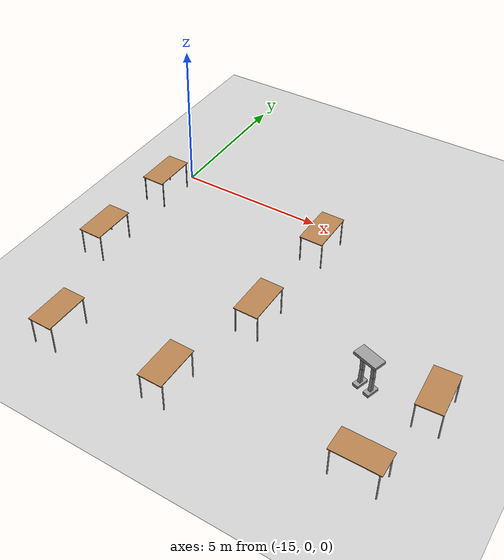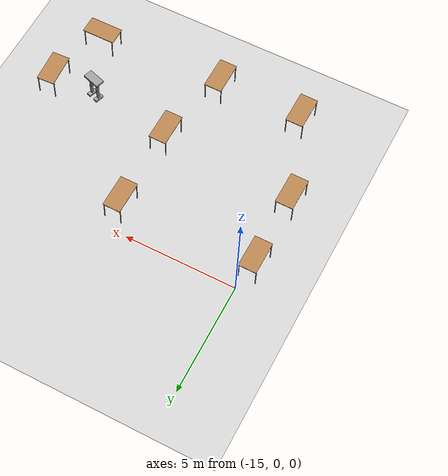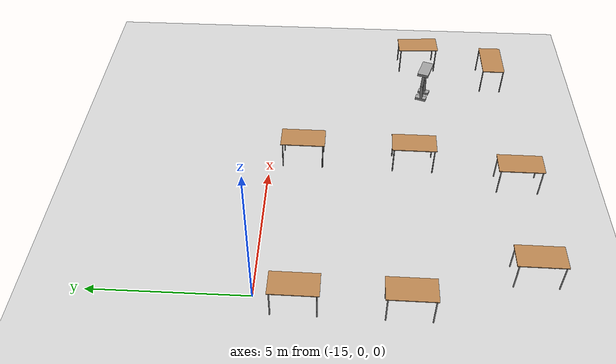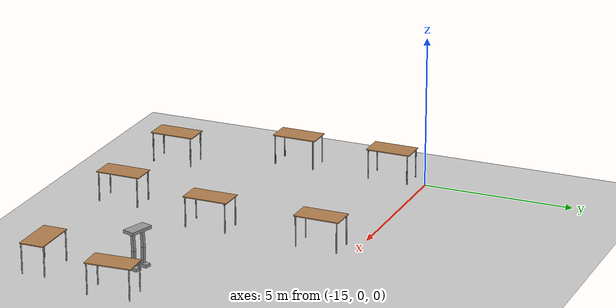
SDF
<sdf version="1.6">
 <world name="default">
  <model name="ground_plane">
   <static>1</static>
   <link name="link">
    <collision name="collision">
     <geometry><plane><normal>0 0 1</normal><size>100 100</size></plane></geometry>
     <surface>
      <contact><collide_bitmask>65535</collide_bitmask></contact>
      <friction><ode><mu>100</mu><mu2>50</mu2></ode></friction>
     </surface>
    </collision>
    <visual name="visual">
     <cast_shadows>0</cast_shadows>
     <geometry><plane><normal>0 0 1</normal><size>100 100</size></plane></geometry>
     <material>
      <script><uri>file://media/materials/scripts/gazebo.material</uri><name>Gazebo/Grey</name></script>
     </material>
    </visual>
   </link>
  </model>
  <model name="table">
   <static>1</static>
   <link name="link">
    <collision name="surface">
     <pose>0 0 1 0 -0 0</pose>
     <geometry><box><size>1.5 0.8 0.03</size></box></geometry>
     <surface><friction><ode><mu>0.6</mu><mu2>0.6</mu2></ode></friction></surface>
    </collision>
    <visual name="visual1">
     <pose>0 0 1 0 -0 0</pose>
     <geometry><box><size>1.5 0.8 0.03</size></box></geometry>
     <material>
      <script><uri>file://media/materials/scripts/gazebo.material</uri><name>Gazebo/Wood</name></script>
     </material>
    </visual>
    <collision name="front_left_leg">
     <pose>0.68 0.38 0.5 0 -0 0</pose>
     <geometry><cylinder><radius>0.02</radius><length>1</length></cylinder></geometry>
    </collision>
    <visual name="front_left_leg">
     <pose>0.68 0.38 0.5 0 -0 0</pose>
     <geometry><cylinder><radius>0.02</radius><length>1</length></cylinder></geometry>
     <material>
      <script><uri>file://media/materials/scripts/gazebo.material</uri><name>Gazebo/Grey</name></script>
     </material>
    </visual>
    <collision name="front_right_leg">
     <pose>0.68 -0.38 0.5 0 -0 0</pose>
     <geometry><cylinder><radius>0.02</radius><length>1</length></cylinder></geometry>
    </collision>
    <visual name="front_right_leg">
     <pose>0.68 -0.38 0.5 0 -0 0</pose>
     <geometry><cylinder><radius>0.02</radius><length>1</length></cylinder></geometry>
     <material>
      <script><uri>file://media/materials/scripts/gazebo.material</uri><name>Gazebo/Grey</name></script>
     </material>
    </visual>
    <collision name="back_right_leg">
     <pose>-0.68 -0.38 0.5 0 -0 0</pose>
     <geometry><cylinder><radius>0.02</radius><length>1</length></cylinder></geometry>
    </collision>
    <visual name="back_right_leg">
     <pose>-0.68 -0.38 0.5 0 -0 0</pose>
     <geometry><cylinder><radius>0.02</radius><length>1</length></cylinder></geometry>
     <material>
      <script><uri>file://media/materials/scripts/gazebo.material</uri><name>Gazebo/Grey</name></script>
     </material>
    </visual>
    <collision name="back_left_leg">
     <pose>-0.68 0.38 0.5 0 -0 0</pose>
     <geometry><cylinder><radius>0.02</radius><length>1</length></cylinder></geometry>
    </collision>
    <visual name="back_left_leg">
     <pose>-0.68 0.38 0.5 0 -0 0</pose>
     <geometry><cylinder><radius>0.02</radius><length>1</length></cylinder></geometry>
     <material>
      <script><uri>file://media/materials/scripts/gazebo.material</uri><name>Gazebo/Grey</name></script>
     </material>
    </visual>
   </link>
   <pose>-4.33003 -8.10689 0 0 -0 0</pose>
  </model>
  <model name="table_clone">
   <static>1</static>
   <link name="link">
    <collision name="surface">
     <pose>0 0 1 0 -0 0</pose>
     <geometry><box><size>1.5 0.8 0.03</size></box></geometry>
     <surface><friction><ode><mu>0.6</mu><mu2>0.6</mu2></ode></friction></surface>
    </collision>
    <visual name="visual1">
     <pose>0 0 1 0 -0 0</pose>
     <geometry><box><size>1.5 0.8 0.03</size></box></geometry>
     <material>
      <script><uri>file://media/materials/scripts/gazebo.material</uri><name>Gazebo/Wood</name></script>
     </material>
    </visual>
    <collision name="front_left_leg">
     <pose>0.68 0.38 0.5 0 -0 0</pose>
     <geometry><cylinder><radius>0.02</radius><length>1</length></cylinder></geometry>
    </collision>
    <visual name="front_left_leg">
     <pose>0.68 0.38 0.5 0 -0 0</pose>
     <geometry><cylinder><radius>0.02</radius><length>1</length></cylinder></geometry>
     <material>
      <script><uri>file://media/materials/scripts/gazebo.material</uri><name>Gazebo/Grey</name></script>
     </material>
    </visual>
    <collision name="front_right_leg">
     <pose>0.68 -0.38 0.5 0 -0 0</pose>
     <geometry><cylinder><radius>0.02</radius><length>1</length></cylinder></geometry>
    </collision>
    <visual name="front_right_leg">
     <pose>0.68 -0.38 0.5 0 -0 0</pose>
     <geometry><cylinder><radius>0.02</radius><length>1</length></cylinder></geometry>
     <material>
      <script><uri>file://media/materials/scripts/gazebo.material</uri><name>Gazebo/Grey</name></script>
     </material>
    </visual>
    <collision name="back_right_leg">
     <pose>-0.68 -0.38 0.5 0 -0 0</pose>
     <geometry><cylinder><radius>0.02</radius><length>1</length></cylinder></geometry>
    </collision>
    <visual name="back_right_leg">
     <pose>-0.68 -0.38 0.5 0 -0 0</pose>
     <geometry><cylinder><radius>0.02</radius><length>1</length></cylinder></geometry>
     <material>
      <script><uri>file://media/materials/scripts/gazebo.material</uri><name>Gazebo/Grey</name></script>
     </material>
    </visual>
    <collision name="back_left_leg">
     <pose>-0.68 0.38 0.5 0 -0 0</pose>
     <geometry><cylinder><radius>0.02</radius><length>1</length></cylinder></geometry>
    </collision>
    <visual name="back_left_leg">
     <pose>-0.68 0.38 0.5 0 -0 0</pose>
     <geometry><cylinder><radius>0.02</radius><length>1</length></cylinder></geometry>
     <material>
      <script><uri>file://media/materials/scripts/gazebo.material</uri><name>Gazebo/Grey</name></script>
     </material>
    </visual>
   </link>
   <pose>-3.46482 -5.32509 0 0 -0 1.62652</pose>
  </model>
  <model name="table_clone_clone_0">
   <static>1</static>
   <link name="link">
    <collision name="surface">
     <pose>0 0 1 0 -0 0</pose>
     <geometry><box><size>1.5 0.8 0.03</size></box></geometry>
     <surface><friction><ode><mu>0.6</mu><mu2>0.6</mu2></ode></friction></surface>
    </collision>
    <visual name="visual1">
     <pose>0 0 1 0 -0 0</pose>
     <geometry><box><size>1.5 0.8 0.03</size></box></geometry>
     <material>
      <script><uri>file://media/materials/scripts/gazebo.material</uri><name>Gazebo/Wood</name></script>
     </material>
    </visual>
    <collision name="front_left_leg">
     <pose>0.68 0.38 0.5 0 -0 0</pose>
     <geometry><cylinder><radius>0.02</radius><length>1</length></cylinder></geometry>
    </collision>
    <visual name="front_left_leg">
     <pose>0.68 0.38 0.5 0 -0 0</pose>
     <geometry><cylinder><radius>0.02</radius><length>1</length></cylinder></geometry>
     <material>
      <script><uri>file://media/materials/scripts/gazebo.material</uri><name>Gazebo/Grey</name></script>
     </material>
    </visual>
    <collision name="front_right_leg">
     <pose>0.68 -0.38 0.5 0 -0 0</pose>
     <geometry><cylinder><radius>0.02</radius><length>1</length></cylinder></geometry>
    </collision>
    <visual name="front_right_leg">
     <pose>0.68 -0.38 0.5 0 -0 0</pose>
     <geometry><cylinder><radius>0.02</radius><length>1</length></cylinder></geometry>
     <material>
      <script><uri>file://media/materials/scripts/gazebo.material</uri><name>Gazebo/Grey</name></script>
     </material>
    </visual>
    <collision name="back_right_leg">
     <pose>-0.68 -0.38 0.5 0 -0 0</pose>
     <geometry><cylinder><radius>0.02</radius><length>1</length></cylinder></geometry>
    </collision>
    <visual name="back_right_leg">
     <pose>-0.68 -0.38 0.5 0 -0 0</pose>
     <geometry><cylinder><radius>0.02</radius><length>1</length></cylinder></geometry>
     <material>
      <script><uri>file://media/materials/scripts/gazebo.material</uri><name>Gazebo/Grey</name></script>
     </material>
    </visual>
    <collision name="back_left_leg">
     <pose>-0.68 0.38 0.5 0 -0 0</pose>
     <geometry><cylinder><radius>0.02</radius><length>1</length></cylinder></geometry>
    </collision>
    <visual name="back_left_leg">
     <pose>-0.68 0.38 0.5 0 -0 0</pose>
     <geometry><cylinder><radius>0.02</radius><length>1</length></cylinder></geometry>
     <material>
      <script><uri>file://media/materials/scripts/gazebo.material</uri><name>Gazebo/Grey</name></script>
     </material>
    </visual>
   </link>
   <pose>-15.2334 -4.56287 0 0 -0 1.56371</pose>
  </model>
  <model name="table_clone_clone_1">
   <static>1</static>
   <link name="link">
    <collision name="surface">
     <pose>0 0 1 0 -0 0</pose>
     <geometry><box><size>1.5 0.8 0.03</size></box></geometry>
     <surface><friction><ode><mu>0.6</mu><mu2>0.6</mu2></ode></friction></surface>
    </collision>
    <visual name="visual1">
     <pose>0 0 1 0 -0 0</pose>
     <geometry><box><size>1.5 0.8 0.03</size></box></geometry>
     <material>
      <script><uri>file://media/materials/scripts/gazebo.material</uri><name>Gazebo/Wood</name></script>
     </material>
    </visual>
    <collision name="front_left_leg">
     <pose>0.68 0.38 0.5 0 -0 0</pose>
     <geometry><cylinder><radius>0.02</radius><length>1</length></cylinder></geometry>
    </collision>
    <visual name="front_left_leg">
     <pose>0.68 0.38 0.5 0 -0 0</pose>
     <geometry><cylinder><radius>0.02</radius><length>1</length></cylinder></geometry>
     <material>
      <script><uri>file://media/materials/scripts/gazebo.material</uri><name>Gazebo/Grey</name></script>
     </material>
    </visual>
    <collision name="front_right_leg">
     <pose>0.68 -0.38 0.5 0 -0 0</pose>
     <geometry><cylinder><radius>0.02</radius><length>1</length></cylinder></geometry>
    </collision>
    <visual name="front_right_leg">
     <pose>0.68 -0.38 0.5 0 -0 0</pose>
     <geometry><cylinder><radius>0.02</radius><length>1</length></cylinder></geometry>
     <material>
      <script><uri>file://media/materials/scripts/gazebo.material</uri><name>Gazebo/Grey</name></script>
     </material>
    </visual>
    <collision name="back_right_leg">
     <pose>-0.68 -0.38 0.5 0 -0 0</pose>
     <geometry><cylinder><radius>0.02</radius><length>1</length></cylinder></geometry>
    </collision>
    <visual name="back_right_leg">
     <pose>-0.68 -0.38 0.5 0 -0 0</pose>
     <geometry><cylinder><radius>0.02</radius><length>1</length></cylinder></geometry>
     <material>
      <script><uri>file://media/materials/scripts/gazebo.material</uri><name>Gazebo/Grey</name></script>
     </material>
    </visual>
    <collision name="back_left_leg">
     <pose>-0.68 0.38 0.5 0 -0 0</pose>
     <geometry><cylinder><radius>0.02</radius><length>1</length></cylinder></geometry>
    </collision>
    <visual name="back_left_leg">
     <pose>-0.68 0.38 0.5 0 -0 0</pose>
     <geometry><cylinder><radius>0.02</radius><length>1</length></cylinder></geometry>
     <material>
      <script><uri>file://media/materials/scripts/gazebo.material</uri><name>Gazebo/Grey</name></script>
     </material>
    </visual>
   </link>
   <pose>-15.2195 -1.24304 0 0 -0 1.56371</pose>
  </model>
  <model name="table_clone_clone_4">
   <static>1</static>
   <link name="link">
    <collision name="surface">
     <pose>0 0 1 0 -0 0</pose>
     <geometry><box><size>1.5 0.8 0.03</size></box></geometry>
     <surface><friction><ode><mu>0.6</mu><mu2>0.6</mu2></ode></friction></surface>
    </collision>
    <visual name="visual1">
     <pose>0 0 1 0 -0 0</pose>
     <geometry><box><size>1.5 0.8 0.03</size></box></geometry>
     <material>
      <script><uri>file://media/materials/scripts/gazebo.material</uri><name>Gazebo/Wood</name></script>
     </material>
    </visual>
    <collision name="front_left_leg">
     <pose>0.68 0.38 0.5 0 -0 0</pose>
     <geometry><cylinder><radius>0.02</radius><length>1</length></cylinder></geometry>
    </collision>
    <visual name="front_left_leg">
     <pose>0.68 0.38 0.5 0 -0 0</pose>
     <geometry><cylinder><radius>0.02</radius><length>1</length></cylinder></geometry>
     <material>
      <script><uri>file://media/materials/scripts/gazebo.material</uri><name>Gazebo/Grey</name></script>
     </material>
    </visual>
    <collision name="front_right_leg">
     <pose>0.68 -0.38 0.5 0 -0 0</pose>
     <geometry><cylinder><radius>0.02</radius><length>1</length></cylinder></geometry>
    </collision>
    <visual name="front_right_leg">
     <pose>0.68 -0.38 0.5 0 -0 0</pose>
     <geometry><cylinder><radius>0.02</radius><length>1</length></cylinder></geometry>
     <material>
      <script><uri>file://media/materials/scripts/gazebo.material</uri><name>Gazebo/Grey</name></script>
     </material>
    </visual>
    <collision name="back_right_leg">
     <pose>-0.68 -0.38 0.5 0 -0 0</pose>
     <geometry><cylinder><radius>0.02</radius><length>1</length></cylinder></geometry>
    </collision>
    <visual name="back_right_leg">
     <pose>-0.68 -0.38 0.5 0 -0 0</pose>
     <geometry><cylinder><radius>0.02</radius><length>1</length></cylinder></geometry>
     <material>
      <script><uri>file://media/materials/scripts/gazebo.material</uri><name>Gazebo/Grey</name></script>
     </material>
    </visual>
    <collision name="back_left_leg">
     <pose>-0.68 0.38 0.5 0 -0 0</pose>
     <geometry><cylinder><radius>0.02</radius><length>1</length></cylinder></geometry>
    </collision>
    <visual name="back_left_leg">
     <pose>-0.68 0.38 0.5 0 -0 0</pose>
     <geometry><cylinder><radius>0.02</radius><length>1</length></cylinder></geometry>
     <material>
      <script><uri>file://media/materials/scripts/gazebo.material</uri><name>Gazebo/Grey</name></script>
     </material>
    </visual>
   </link>
   <pose>-9.1294 -1.14535 0 0 -0 1.56371</pose>
  </model>
  <model name="table_clone_clone_5">
   <static>1</static>
   <link name="link">
    <collision name="surface">
     <pose>0 0 1 0 -0 0</pose>
     <geometry><box><size>1.5 0.8 0.03</size></box></geometry>
     <surface><friction><ode><mu>0.6</mu><mu2>0.6</mu2></ode></friction></surface>
    </collision>
    <visual name="visual1">
     <pose>0 0 1 0 -0 0</pose>
     <geometry><box><size>1.5 0.8 0.03</size></box></geometry>
     <material>
      <script><uri>file://media/materials/scripts/gazebo.material</uri><name>Gazebo/Wood</name></script>
     </material>
    </visual>
    <collision name="front_left_leg">
     <pose>0.68 0.38 0.5 0 -0 0</pose>
     <geometry><cylinder><radius>0.02</radius><length>1</length></cylinder></geometry>
    </collision>
    <visual name="front_left_leg">
     <pose>0.68 0.38 0.5 0 -0 0</pose>
     <geometry><cylinder><radius>0.02</radius><length>1</length></cylinder></geometry>
     <material>
      <script><uri>file://media/materials/scripts/gazebo.material</uri><name>Gazebo/Grey</name></script>
     </material>
    </visual>
    <collision name="front_right_leg">
     <pose>0.68 -0.38 0.5 0 -0 0</pose>
     <geometry><cylinder><radius>0.02</radius><length>1</length></cylinder></geometry>
    </collision>
    <visual name="front_right_leg">
     <pose>0.68 -0.38 0.5 0 -0 0</pose>
     <geometry><cylinder><radius>0.02</radius><length>1</length></cylinder></geometry>
     <material>
      <script><uri>file://media/materials/scripts/gazebo.material</uri><name>Gazebo/Grey</name></script>
     </material>
    </visual>
    <collision name="back_right_leg">
     <pose>-0.68 -0.38 0.5 0 -0 0</pose>
     <geometry><cylinder><radius>0.02</radius><length>1</length></cylinder></geometry>
    </collision>
    <visual name="back_right_leg">
     <pose>-0.68 -0.38 0.5 0 -0 0</pose>
     <geometry><cylinder><radius>0.02</radius><length>1</length></cylinder></geometry>
     <material>
      <script><uri>file://media/materials/scripts/gazebo.material</uri><name>Gazebo/Grey</name></script>
     </material>
    </visual>
    <collision name="back_left_leg">
     <pose>-0.68 0.38 0.5 0 -0 0</pose>
     <geometry><cylinder><radius>0.02</radius><length>1</length></cylinder></geometry>
    </collision>
    <visual name="back_left_leg">
     <pose>-0.68 0.38 0.5 0 -0 0</pose>
     <geometry><cylinder><radius>0.02</radius><length>1</length></cylinder></geometry>
     <material>
      <script><uri>file://media/materials/scripts/gazebo.material</uri><name>Gazebo/Grey</name></script>
     </material>
    </visual>
   </link>
   <pose>-9.19399 -4.91758 0 0 -0 1.56371</pose>
  </model>
  <model name="table_clone_clone_6">
   <static>1</static>
   <link name="link">
    <collision name="surface">
     <pose>0 0 1 0 -0 0</pose>
     <geometry><box><size>1.5 0.8 0.03</size></box></geometry>
     <surface><friction><ode><mu>0.6</mu><mu2>0.6</mu2></ode></friction></surface>
    </collision>
    <visual name="visual1">
     <pose>0 0 1 0 -0 0</pose>
     <geometry><box><size>1.5 0.8 0.03</size></box></geometry>
     <material>
      <script><uri>file://media/materials/scripts/gazebo.material</uri><name>Gazebo/Wood</name></script>
     </material>
    </visual>
    <collision name="front_left_leg">
     <pose>0.68 0.38 0.5 0 -0 0</pose>
     <geometry><cylinder><radius>0.02</radius><length>1</length></cylinder></geometry>
    </collision>
    <visual name="front_left_leg">
     <pose>0.68 0.38 0.5 0 -0 0</pose>
     <geometry><cylinder><radius>0.02</radius><length>1</length></cylinder></geometry>
     <material>
      <script><uri>file://media/materials/scripts/gazebo.material</uri><name>Gazebo/Grey</name></script>
     </material>
    </visual>
    <collision name="front_right_leg">
     <pose>0.68 -0.38 0.5 0 -0 0</pose>
     <geometry><cylinder><radius>0.02</radius><length>1</length></cylinder></geometry>
    </collision>
    <visual name="front_right_leg">
     <pose>0.68 -0.38 0.5 0 -0 0</pose>
     <geometry><cylinder><radius>0.02</radius><length>1</length></cylinder></geometry>
     <material>
      <script><uri>file://media/materials/scripts/gazebo.material</uri><name>Gazebo/Grey</name></script>
     </material>
    </visual>
    <collision name="back_right_leg">
     <pose>-0.68 -0.38 0.5 0 -0 0</pose>
     <geometry><cylinder><radius>0.02</radius><length>1</length></cylinder></geometry>
    </collision>
    <visual name="back_right_leg">
     <pose>-0.68 -0.38 0.5 0 -0 0</pose>
     <geometry><cylinder><radius>0.02</radius><length>1</length></cylinder></geometry>
     <material>
      <script><uri>file://media/materials/scripts/gazebo.material</uri><name>Gazebo/Grey</name></script>
     </material>
    </visual>
    <collision name="back_left_leg">
     <pose>-0.68 0.38 0.5 0 -0 0</pose>
     <geometry><cylinder><radius>0.02</radius><length>1</length></cylinder></geometry>
    </collision>
    <visual name="back_left_leg">
     <pose>-0.68 0.38 0.5 0 -0 0</pose>
     <geometry><cylinder><radius>0.02</radius><length>1</length></cylinder></geometry>
     <material>
      <script><uri>file://media/materials/scripts/gazebo.material</uri><name>Gazebo/Grey</name></script>
     </material>
    </visual>
   </link>
   <pose>-13.878 -8.37207 0 0 -0 1.56371</pose>
  </model>
  <model name="table_clone_clone_7">
   <static>1</static>
   <link name="link">
    <collision name="surface">
     <pose>0 0 1 0 -0 0</pose>
     <geometry><box><size>1.5 0.8 0.03</size></box></geometry>
     <surface><friction><ode><mu>0.6</mu><mu2>0.6</mu2></ode></friction></surface>
    </collision>
    <visual name="visual1">
     <pose>0 0 1 0 -0 0</pose>
     <geometry><box><size>1.5 0.8 0.03</size></box></geometry>
     <material>
      <script><uri>file://media/materials/scripts/gazebo.material</uri><name>Gazebo/Wood</name></script>
     </material>
    </visual>
    <collision name="front_left_leg">
     <pose>0.68 0.38 0.5 0 -0 0</pose>
     <geometry><cylinder><radius>0.02</radius><length>1</length></cylinder></geometry>
    </collision>
    <visual name="front_left_leg">
     <pose>0.68 0.38 0.5 0 -0 0</pose>
     <geometry><cylinder><radius>0.02</radius><length>1</length></cylinder></geometry>
     <material>
      <script><uri>file://media/materials/scripts/gazebo.material</uri><name>Gazebo/Grey</name></script>
     </material>
    </visual>
    <collision name="front_right_leg">
     <pose>0.68 -0.38 0.5 0 -0 0</pose>
     <geometry><cylinder><radius>0.02</radius><length>1</length></cylinder></geometry>
    </collision>
    <visual name="front_right_leg">
     <pose>0.68 -0.38 0.5 0 -0 0</pose>
     <geometry><cylinder><radius>0.02</radius><length>1</length></cylinder></geometry>
     <material>
      <script><uri>file://media/materials/scripts/gazebo.material</uri><name>Gazebo/Grey</name></script>
     </material>
    </visual>
    <collision name="back_right_leg">
     <pose>-0.68 -0.38 0.5 0 -0 0</pose>
     <geometry><cylinder><radius>0.02</radius><length>1</length></cylinder></geometry>
    </collision>
    <visual name="back_right_leg">
     <pose>-0.68 -0.38 0.5 0 -0 0</pose>
     <geometry><cylinder><radius>0.02</radius><length>1</length></cylinder></geometry>
     <material>
      <script><uri>file://media/materials/scripts/gazebo.material</uri><name>Gazebo/Grey</name></script>
     </material>
    </visual>
    <collision name="back_left_leg">
     <pose>-0.68 0.38 0.5 0 -0 0</pose>
     <geometry><cylinder><radius>0.02</radius><length>1</length></cylinder></geometry>
    </collision>
    <visual name="back_left_leg">
     <pose>-0.68 0.38 0.5 0 -0 0</pose>
     <geometry><cylinder><radius>0.02</radius><length>1</length></cylinder></geometry>
     <material>
      <script><uri>file://media/materials/scripts/gazebo.material</uri><name>Gazebo/Grey</name></script>
     </material>
    </visual>
   </link>
   <pose>-10.0236 -8.36947 0 0 -0 1.56371</pose>
  </model>
  <model name="HumanoidRobot_clone_clone">
   <link name="link_0">
    <inertial>
     <mass>1</mass>
     <inertia>
      <ixx>0.166667</ixx>
      <ixy>0</ixy>
      <ixz>0</ixz>
      <iyy>0.166667</iyy>
      <iyz>0</iyz>
      <izz>0.166667</izz>
     </inertia>
    </inertial>
    <pose>0 0 1.2 0 -0 0</pose>
    <visual name="visual">
     <geometry><box><size>0.4 0.8 0.1</size></box></geometry>
     <material>
      <lighting>1</lighting>
      <script><uri>file://media/materials/scripts/gazebo.material</uri><name>Gazebo/Grey</name></script>
      <shader type="vertex"><normal_map>__default__</normal_map></shader>
      <ambient>0.3 0.3 0.3 1</ambient>
      <diffuse>0.7 0.7 0.7 1</diffuse>
      <specular>0.01 0.01 0.01 1</specular>
      <emissive>0 0 0 1</emissive>
     </material>
    </visual>
    <collision name="collision">
     <geometry><box><size>0.4 0.8 0.1</size></box></geometry>
     <surface>
      <friction>
       <ode><mu>1</mu><mu2>1</mu2><fdir1>0 0 0</fdir1><slip1>0</slip1><slip2>0</slip2></ode>
       <torsional>
        <coefficient>1</coefficient>
        <patch_radius>0</patch_radius>
        <surface_radius>0</surface_radius>
        <use_patch_radius>1</use_patch_radius>
        <ode><slip>0</slip></ode>
       </torsional>
      </friction>
      <bounce><restitution_coefficient>0</restitution_coefficient><threshold>1e+06</threshold></bounce>
      <contact>
       <collide_without_contact>0</collide_without_contact>
       <collide_without_contact_bitmask>1</collide_without_contact_bitmask>
       <collide_bitmask>1</collide_bitmask>
       <ode>
        <soft_cfm>0</soft_cfm>
        <soft_erp>0.2</soft_erp>
        <kp>1e+13</kp>
        <kd>1</kd>
        <max_vel>0.01</max_vel>
        <min_depth>0</min_depth>
       </ode>
       <bullet>
        <split_impulse>1</split_impulse>
        <split_impulse_penetration_threshold>-0.01</split_impulse_penetration_threshold>
        <soft_cfm>0</soft_cfm>
        <soft_erp>0.2</soft_erp>
        <kp>1e+13</kp>
        <kd>1</kd>
       </bullet>
      </contact>
     </surface>
    </collision>
   </link>
   <link name="link_0_clone">
    <inertial>
     <mass>1</mass>
     <inertia>
      <ixx>0.166667</ixx>
      <ixy>0</ixy>
      <ixz>0</ixz>
      <iyy>0.166667</iyy>
      <iyz>0</iyz>
      <izz>0.166667</izz>
     </inertia>
    </inertial>
    <pose>0 0.2 0 0 -0 0</pose>
    <visual name="visual">
     <geometry><box><size>0.4 0.2 0.1</size></box></geometry>
     <material>
      <lighting>1</lighting>
      <script><uri>file://media/materials/scripts/gazebo.material</uri><name>Gazebo/Grey</name></script>
      <shader type="vertex"><normal_map>__default__</normal_map></shader>
      <ambient>0.3 0.3 0.3 1</ambient>
      <diffuse>0.7 0.7 0.7 1</diffuse>
      <specular>0.01 0.01 0.01 1</specular>
      <emissive>0 0 0 1</emissive>
     </material>
    </visual>
    <collision name="collision">
     <geometry><box><size>0.4 0.2 0.1</size></box></geometry>
     <surface>
      <friction>
       <ode><mu>1</mu><mu2>1</mu2><fdir1>0 0 0</fdir1><slip1>0</slip1><slip2>0</slip2></ode>
       <torsional>
        <coefficient>1</coefficient>
        <patch_radius>0</patch_radius>
        <surface_radius>0</surface_radius>
        <use_patch_radius>1</use_patch_radius>
        <ode><slip>0</slip></ode>
       </torsional>
      </friction>
      <bounce><restitution_coefficient>0</restitution_coefficient><threshold>1e+06</threshold></bounce>
      <contact>
       <collide_without_contact>0</collide_without_contact>
       <collide_without_contact_bitmask>1</collide_without_contact_bitmask>
       <collide_bitmask>1</collide_bitmask>
       <ode>
        <soft_cfm>0</soft_cfm>
        <soft_erp>0.2</soft_erp>
        <kp>1e+13</kp>
        <kd>1</kd>
        <max_vel>0.01</max_vel>
        <min_depth>0</min_depth>
       </ode>
       <bullet>
        <split_impulse>1</split_impulse>
        <split_impulse_penetration_threshold>-0.01</split_impulse_penetration_threshold>
        <soft_cfm>0</soft_cfm>
        <soft_erp>0.2</soft_erp>
        <kp>1e+13</kp>
        <kd>1</kd>
       </bullet>
      </contact>
     </surface>
    </collision>
   </link>
   <link name="link_0_clone_clone">
    <inertial>
     <mass>1</mass>
     <inertia>
      <ixx>0.166667</ixx>
      <ixy>0</ixy>
      <ixz>0</ixz>
      <iyy>0.166667</iyy>
      <iyz>0</iyz>
      <izz>0.166667</izz>
     </inertia>
    </inertial>
    <pose>0 -0.2 0 0 -0 0</pose>
    <visual name="visual">
     <geometry><box><size>0.4 0.2 0.1</size></box></geometry>
     <material>
      <lighting>1</lighting>
      <script><uri>file://media/materials/scripts/gazebo.material</uri><name>Gazebo/Grey</name></script>
      <shader type="vertex"><normal_map>__default__</normal_map></shader>
      <ambient>0.3 0.3 0.3 1</ambient>
      <diffuse>0.7 0.7 0.7 1</diffuse>
      <specular>0.01 0.01 0.01 1</specular>
      <emissive>0 0 0 1</emissive>
     </material>
    </visual>
    <collision name="collision">
     <geometry><box><size>0.4 0.2 0.1</size></box></geometry>
     <surface>
      <friction>
       <ode><mu>1</mu><mu2>1</mu2><fdir1>0 0 0</fdir1><slip1>0</slip1><slip2>0</slip2></ode>
       <torsional>
        <coefficient>1</coefficient>
        <patch_radius>0</patch_radius>
        <surface_radius>0</surface_radius>
        <use_patch_radius>1</use_patch_radius>
        <ode><slip>0</slip></ode>
       </torsional>
      </friction>
      <bounce><restitution_coefficient>0</restitution_coefficient><threshold>1e+06</threshold></bounce>
      <contact>
       <collide_without_contact>0</collide_without_contact>
       <collide_without_contact_bitmask>1</collide_without_contact_bitmask>
       <collide_bitmask>1</collide_bitmask>
       <ode>
        <soft_cfm>0</soft_cfm>
        <soft_erp>0.2</soft_erp>
        <kp>1e+13</kp>
        <kd>1</kd>
        <max_vel>0.01</max_vel>
        <min_depth>0</min_depth>
       </ode>
       <bullet>
        <split_impulse>1</split_impulse>
        <split_impulse_penetration_threshold>-0.01</split_impulse_penetration_threshold>
        <soft_cfm>0</soft_cfm>
        <soft_erp>0.2</soft_erp>
        <kp>1e+13</kp>
        <kd>1</kd>
       </bullet>
      </contact>
     </surface>
    </collision>
   </link>
   <link name="link_1">
    <inertial>
     <mass>1</mass>
     <inertia>
      <ixx>0.166667</ixx>
      <ixy>0</ixy>
      <ixz>0</ixz>
      <iyy>0.166667</iyy>
      <iyz>0</iyz>
      <izz>0.166667</izz>
     </inertia>
    </inertial>
    <pose>0 0.2 0.86 0 0.05 0</pose>
    <visual name="visual">
     <geometry><box><size>0.1 0.1 0.6</size></box></geometry>
     <material>
      <lighting>1</lighting>
      <script><uri>file://media/materials/scripts/gazebo.material</uri><name>Gazebo/Grey</name></script>
      <shader type="vertex"><normal_map>__default__</normal_map></shader>
      <ambient>0.3 0.3 0.3 1</ambient>
      <diffuse>0.7 0.7 0.7 1</diffuse>
      <specular>0.01 0.01 0.01 1</specular>
      <emissive>0 0 0 1</emissive>
     </material>
    </visual>
    <collision name="collision">
     <geometry><box><size>0.1 0.1 0.6</size></box></geometry>
     <surface>
      <friction>
       <ode><mu>1</mu><mu2>1</mu2><fdir1>0 0 0</fdir1><slip1>0</slip1><slip2>0</slip2></ode>
       <torsional>
        <coefficient>1</coefficient>
        <patch_radius>0</patch_radius>
        <surface_radius>0</surface_radius>
        <use_patch_radius>1</use_patch_radius>
        <ode><slip>0</slip></ode>
       </torsional>
      </friction>
      <bounce><restitution_coefficient>0</restitution_coefficient><threshold>1e+06</threshold></bounce>
      <contact>
       <collide_without_contact>0</collide_without_contact>
       <collide_without_contact_bitmask>1</collide_without_contact_bitmask>
       <collide_bitmask>1</collide_bitmask>
       <ode>
        <soft_cfm>0</soft_cfm>
        <soft_erp>0.2</soft_erp>
        <kp>1e+13</kp>
        <kd>1</kd>
        <max_vel>0.01</max_vel>
        <min_depth>0</min_depth>
       </ode>
       <bullet>
        <split_impulse>1</split_impulse>
        <split_impulse_penetration_threshold>-0.01</split_impulse_penetration_threshold>
        <soft_cfm>0</soft_cfm>
        <soft_erp>0.2</soft_erp>
        <kp>1e+13</kp>
        <kd>1</kd>
       </bullet>
      </contact>
     </surface>
    </collision>
   </link>
   <link name="link_1_clone">
    <inertial>
     <mass>1</mass>
     <inertia>
      <ixx>0.166667</ixx>
      <ixy>0</ixy>
      <ixz>0</ixz>
      <iyy>0.166667</iyy>
      <iyz>0</iyz>
      <izz>0.166667</izz>
     </inertia>
    </inertial>
    <pose>0 -0.2 0.86 0 0.05 0</pose>
    <visual name="visual">
     <geometry><box><size>0.1 0.1 0.6</size></box></geometry>
     <material>
      <lighting>1</lighting>
      <script><uri>file://media/materials/scripts/gazebo.material</uri><name>Gazebo/Grey</name></script>
      <shader type="vertex"><normal_map>__default__</normal_map></shader>
      <ambient>0.3 0.3 0.3 1</ambient>
      <diffuse>0.7 0.7 0.7 1</diffuse>
      <specular>0.01 0.01 0.01 1</specular>
      <emissive>0 0 0 1</emissive>
     </material>
    </visual>
    <collision name="collision">
     <geometry><box><size>0.1 0.1 0.6</size></box></geometry>
     <surface>
      <friction>
       <ode><mu>1</mu><mu2>1</mu2><fdir1>0 0 0</fdir1><slip1>0</slip1><slip2>0</slip2></ode>
       <torsional>
        <coefficient>1</coefficient>
        <patch_radius>0</patch_radius>
        <surface_radius>0</surface_radius>
        <use_patch_radius>1</use_patch_radius>
        <ode><slip>0</slip></ode>
       </torsional>
      </friction>
      <bounce><restitution_coefficient>0</restitution_coefficient><threshold>1e+06</threshold></bounce>
      <contact>
       <collide_without_contact>0</collide_without_contact>
       <collide_without_contact_bitmask>1</collide_without_contact_bitmask>
       <collide_bitmask>1</collide_bitmask>
       <ode>
        <soft_cfm>0</soft_cfm>
        <soft_erp>0.2</soft_erp>
        <kp>1e+13</kp>
        <kd>1</kd>
        <max_vel>0.01</max_vel>
        <min_depth>0</min_depth>
       </ode>
       <bullet>
        <split_impulse>1</split_impulse>
        <split_impulse_penetration_threshold>-0.01</split_impulse_penetration_threshold>
        <soft_cfm>0</soft_cfm>
        <soft_erp>0.2</soft_erp>
        <kp>1e+13</kp>
        <kd>1</kd>
       </bullet>
      </contact>
     </surface>
    </collision>
   </link>
   <link name="link_1_clone_0">
    <inertial>
     <mass>1</mass>
     <inertia>
      <ixx>0.166667</ixx>
      <ixy>0</ixy>
      <ixz>0</ixz>
      <iyy>0.166667</iyy>
      <iyz>0</iyz>
      <izz>0.166667</izz>
     </inertia>
    </inertial>
    <pose>0 0.2 0.27 0 -0.05 0</pose>
    <visual name="visual">
     <geometry><box><size>0.1 0.1 0.6</size></box></geometry>
     <material>
      <lighting>1</lighting>
      <script><uri>file://media/materials/scripts/gazebo.material</uri><name>Gazebo/Grey</name></script>
      <shader type="vertex"><normal_map>__default__</normal_map></shader>
      <ambient>0.3 0.3 0.3 1</ambient>
      <diffuse>0.7 0.7 0.7 1</diffuse>
      <specular>0.01 0.01 0.01 1</specular>
      <emissive>0 0 0 1</emissive>
     </material>
    </visual>
    <collision name="collision">
     <geometry><box><size>0.1 0.1 0.6</size></box></geometry>
     <surface>
      <friction>
       <ode><mu>1</mu><mu2>1</mu2><fdir1>0 0 0</fdir1><slip1>0</slip1><slip2>0</slip2></ode>
       <torsional>
        <coefficient>1</coefficient>
        <patch_radius>0</patch_radius>
        <surface_radius>0</surface_radius>
        <use_patch_radius>1</use_patch_radius>
        <ode><slip>0</slip></ode>
       </torsional>
      </friction>
      <bounce><restitution_coefficient>0</restitution_coefficient><threshold>1e+06</threshold></bounce>
      <contact>
       <collide_without_contact>0</collide_without_contact>
       <collide_without_contact_bitmask>1</collide_without_contact_bitmask>
       <collide_bitmask>1</collide_bitmask>
       <ode>
        <soft_cfm>0</soft_cfm>
        <soft_erp>0.2</soft_erp>
        <kp>1e+13</kp>
        <kd>1</kd>
        <max_vel>0.01</max_vel>
        <min_depth>0</min_depth>
       </ode>
       <bullet>
        <split_impulse>1</split_impulse>
        <split_impulse_penetration_threshold>-0.01</split_impulse_penetration_threshold>
        <soft_cfm>0</soft_cfm>
        <soft_erp>0.2</soft_erp>
        <kp>1e+13</kp>
        <kd>1</kd>
       </bullet>
      </contact>
     </surface>
    </collision>
   </link>
   <link name="link_1_clone_0_clone">
    <inertial>
     <mass>1</mass>
     <inertia>
      <ixx>0.166667</ixx>
      <ixy>0</ixy>
      <ixz>0</ixz>
      <iyy>0.166667</iyy>
      <iyz>0</iyz>
      <izz>0.166667</izz>
     </inertia>
    </inertial>
    <pose>0 -0.2 0.27 0 -0.05 0</pose>
    <visual name="visual">
     <geometry><box><size>0.1 0.1 0.6</size></box></geometry>
     <material>
      <lighting>1</lighting>
      <script><uri>file://media/materials/scripts/gazebo.material</uri><name>Gazebo/Grey</name></script>
      <shader type="vertex"><normal_map>__default__</normal_map></shader>
      <ambient>0.3 0.3 0.3 1</ambient>
      <diffuse>0.7 0.7 0.7 1</diffuse>
      <specular>0.01 0.01 0.01 1</specular>
      <emissive>0 0 0 1</emissive>
     </material>
    </visual>
    <collision name="collision">
     <geometry><box><size>0.1 0.1 0.6</size></box></geometry>
     <surface>
      <friction>
       <ode><mu>1</mu><mu2>1</mu2><fdir1>0 0 0</fdir1><slip1>0</slip1><slip2>0</slip2></ode>
       <torsional>
        <coefficient>1</coefficient>
        <patch_radius>0</patch_radius>
        <surface_radius>0</surface_radius>
        <use_patch_radius>1</use_patch_radius>
        <ode><slip>0</slip></ode>
       </torsional>
      </friction>
      <bounce><restitution_coefficient>0</restitution_coefficient><threshold>1e+06</threshold></bounce>
      <contact>
       <collide_without_contact>0</collide_without_contact>
       <collide_without_contact_bitmask>1</collide_without_contact_bitmask>
       <collide_bitmask>1</collide_bitmask>
       <ode>
        <soft_cfm>0</soft_cfm>
        <soft_erp>0.2</soft_erp>
        <kp>1e+13</kp>
        <kd>1</kd>
        <max_vel>0.01</max_vel>
        <min_depth>0</min_depth>
       </ode>
       <bullet>
        <split_impulse>1</split_impulse>
        <split_impulse_penetration_threshold>-0.01</split_impulse_penetration_threshold>
        <soft_cfm>0</soft_cfm>
        <soft_erp>0.2</soft_erp>
        <kp>1e+13</kp>
        <kd>1</kd>
       </bullet>
      </contact>
     </surface>
    </collision>
   </link>
   <joint name="link_0_JOINT_0" type="fixed">
    <parent>link_0</parent>
    <child>link_1_clone</child>
    <physics>
     <ode><limit><cfm>0</cfm><erp>0.2</erp></limit><suspension><cfm>0</cfm><erp>0.2</erp></suspension></ode>
    </physics>
   </joint>
   <joint name="link_0_JOINT_1" type="fixed">
    <parent>link_0</parent>
    <child>link_1</child>
    <physics>
     <ode><limit><cfm>0</cfm><erp>0.2</erp></limit><suspension><cfm>0</cfm><erp>0.2</erp></suspension></ode>
    </physics>
   </joint>
   <joint name="link_1_JOINT_3" type="fixed">
    <parent>link_1</parent>
    <child>link_1_clone_0</child>
    <physics>
     <ode><limit><cfm>0</cfm><erp>0.2</erp></limit><suspension><cfm>0</cfm><erp>0.2</erp></suspension></ode>
    </physics>
   </joint>
   <joint name="link_1_clone_0_JOINT_5" type="fixed">
    <parent>link_1_clone_0</parent>
    <child>link_0_clone</child>
    <physics>
     <ode><limit><cfm>0</cfm><erp>0.2</erp></limit><suspension><cfm>0</cfm><erp>0.2</erp></suspension></ode>
    </physics>
   </joint>
   <joint name="link_1_clone_0_clone_JOINT_4" type="fixed">
    <parent>link_1_clone_0_clone</parent>
    <child>link_0_clone_clone</child>
    <physics>
     <ode><limit><cfm>0</cfm><erp>0.2</erp></limit><suspension><cfm>0</cfm><erp>0.2</erp></suspension></ode>
    </physics>
   </joint>
   <joint name="link_1_clone_JOINT_2" type="fixed">
    <parent>link_1_clone</parent>
    <child>link_1_clone_0_clone</child>
    <physics>
     <ode><limit><cfm>0</cfm><erp>0.2</erp></limit><suspension><cfm>0</cfm><erp>0.2</erp></suspension></ode>
    </physics>
   </joint>
   <static>0</static>
   <pose>-5.4031 -5.49373 0.05 -2e-06 1e-06 -1.89029</pose>
  </model>
 </world>
</sdf>
